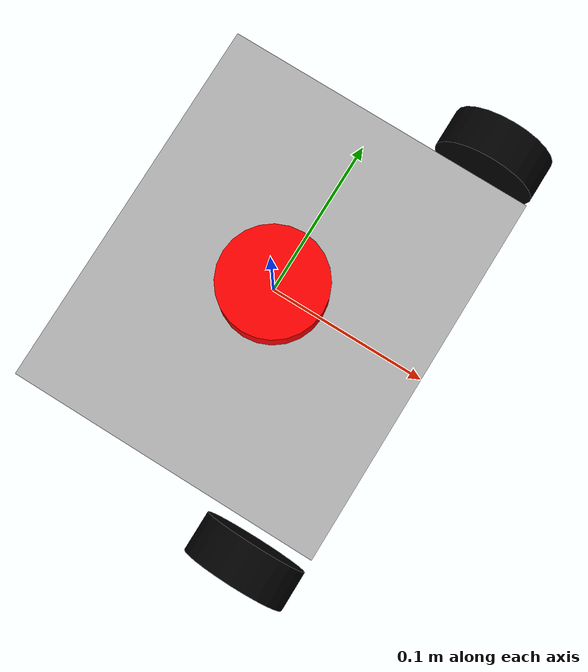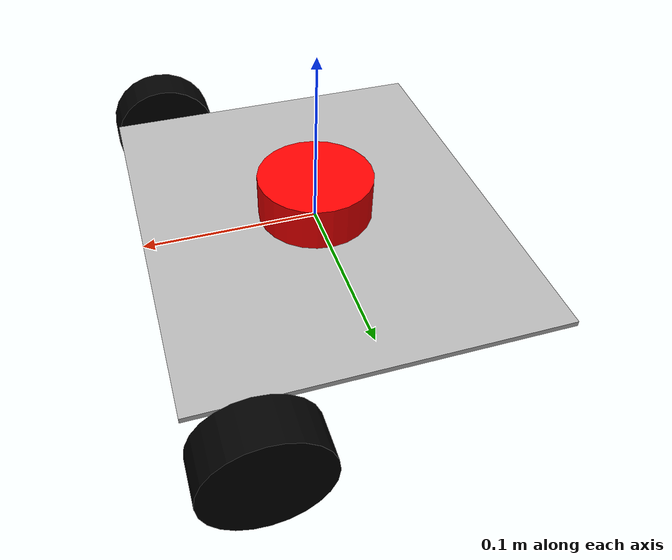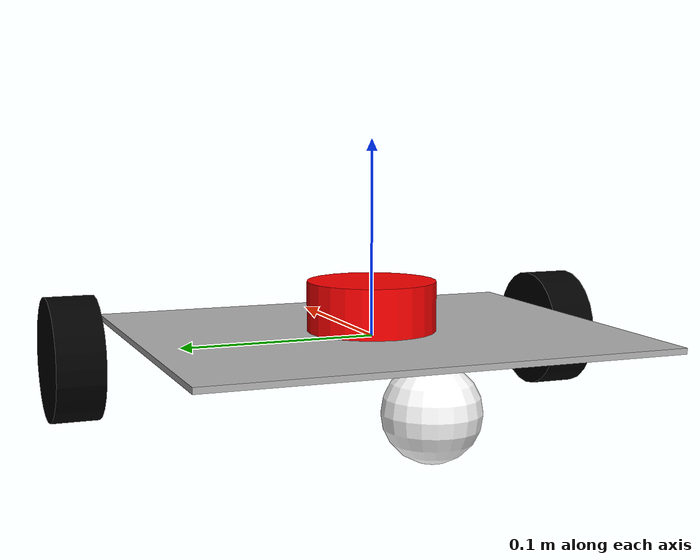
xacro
<?xml version="1.0"?>
<robot xmlns:xacro="https://www.ros.org/wiki/xacro" name="robot">

    <xacro:arg name="use_ros2_control" default="true"/>

    <!--this will be just the robot core components (excluding sensors and such)-->
    <xacro:include filename="robot_core.xacro"/>

    <xacro:if value="$(arg use_ros2_control)">
        <xacro:include filename="ros2_control.xacro" />
    </xacro:if>

    <xacro:unless value="$(arg use_ros2_control)">
        <xacro:include filename="gazebo_control.xacro"/>
    </xacro:unless>

    <!--now add another for the lidar sensor-->
    <xacro:include filename="lidar.xacro"/>

</robot>

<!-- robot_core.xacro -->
<robot xmlns:xacro="https://www.ros.org/wiki/xacro">

    <xacro:include filename="robot_material.xacro"/>
    <xacro:include filename="inertial_macros.xacro"/>

    <link name="base_link"/>

    <link name="chassis_link">
        <visual>
            <geometry>
                <box size=".2 .24 .003"/>
            </geometry>
            <origin xyz="0 0 0.0015" rpy="0 0 0" />
            <material name="gray" />
        </visual>
        <collision>
            <geometry>
                <box size=".2 .24 .003"/>
            </geometry>
            <origin xyz="0 0 0.0015" rpy="0 0 0" />
        </collision>
        <xacro:inertial_box mass=".09" x=".2" y=".24" z=".003">
            <origin xyz="0 0 0.0015" rpy="0 0 0"/>
        </xacro:inertial_box>
    </link>

    <joint name="chassis_joint" type="fixed">
        <parent link="base_link"/>
        <child link="chassis_link"/>
        <origin xyz="0 0 0" rpy="0 0 0"/>
    </joint>

    <gazebo reference="chassis_link">
        <material>Gazebo/White</material>
    </gazebo>

    <link name="left_wheel_link">
        <visual>
            <geometry>
                    <cylinder radius=".033" length="0.0254"/>
                </geometry>
                <origin xyz="0 0 0" rpy="0 0 0" />
                <material name="black"/>
        </visual>
        <collision>
            <geometry>
                <cylinder radius=".033" length="0.0254"/>
            </geometry>
            <origin xyz="0 0 0" rpy="0 0 0"/>
        </collision>
        <xacro:inertial_cylinder mass=".1" length=".0254" radius=".033">
            <origin xyz="0 0 0 " rpy="0 0 0"/>
        </xacro:inertial_cylinder>
    </link>

    <joint name="base_left_wheel_joint" type="continuous">
        <parent link="base_link"/>
        <child link="left_wheel_link"/>
        <origin xyz="0.06825 0.14143125 -.0145" rpy="-${pi/2} 0 0"/>
        <axis xyz="0 0 1" />
        <limit effort="30" velocity="10"/> <!--this will likely change, see urdf page. Effort could be set to estimated stall torque-->
    </joint>

    <gazebo reference="left_wheel_link">
        <material>Gazebo/Black</material>
    </gazebo>

    <link name="right_wheel_link">
        <visual>
            <geometry>
                <cylinder radius=".033" length="0.0254"/>
            </geometry>
            <origin xyz="0 0 0" rpy="0 0 0" />
            <material name="black"/>
        </visual>
        <collision>
            <geometry>
                <cylinder radius=".033" length="0.0254"/>
            </geometry>
            <origin xyz="0 0 0" rpy="0 0 0"/>
        </collision>
                <xacro:inertial_cylinder mass=".1" length=".0254" radius=".033">
            <origin xyz="0 0 0 " rpy="0 0 0"/>
        </xacro:inertial_cylinder>
    </link>

    <joint name="base_right_wheel_joint" type="continuous">
        <parent link="base_link"/>
        <child link="right_wheel_link"/>
        <origin xyz="0.06825 -0.14143125 -.0145" rpy="${pi/2} 0 0"/>
        <axis xyz="0 0 -1" />
        <limit effort="30" velocity="10"/> <!--this will likely change, see urdf page. Effort could be set to estimated stall torque-->
    </joint>

    <gazebo reference="right_wheel_link">
        <material>Gazebo/Black</material>
    </gazebo>

    <link name="caster_wheel_link">
        <visual>
            <geometry>
                <sphere radius=".02375"/>
            </geometry>
            <origin xyz="0 0 0" rpy="0 0 0" />
            <material name="white"/>
        </visual>
        <collision>
            <geometry>
                <sphere radius=".02375"/>
            </geometry>
            <origin xyz="0 0 0" rpy="0 0 0"/>
        </collision>
        <inertial>
            <mass value="0.034"/>
            <origin xyz="0 0 0" rpy="0 0 0"/>
            <inertia ixx=".00000767125" ixy="0" ixz="0" iyy=".00000767125" iyz="0" izz=".00000767125"/>
        </inertial>
        <xacro:inertial_sphere mass=".1" radius=".02375">
            <origin xyz="0 0 0" rpy="0 0 0"/>
        </xacro:inertial_sphere>
    </link>

    <joint name="base_caster_wheel_joint" type="fixed">
        <parent link="base_link"/>
        <child link="caster_wheel_link"/>
        <origin xyz="-0.0730125 0 -.02375" rpy="0 0 0"/>
    </joint>

    <gazebo reference="caster_wheel_link">
        <material>Gazebo/White</material>
    </gazebo>

</robot>

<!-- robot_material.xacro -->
<robot xmlns:xacro="https://www.ros.org/wiki/xacro">

    <material name="gray">
        <color rgba="0.7 0.7 0.7 1"/>
    </material>

    <material name="green">
        <color rgba="0 0.6 0 1"/>
    </material>

    <material name="white">
        <color rgba="1 1 1 1"/>
    </material>

    <material name="blue">
        <color rgba="0 0 1 1"/>
    </material>

    <material name="black">
        <color rgba="0 0 0 1"/>
    </material>

    <material name="red">
        <color rgba="1 0 0 1"/>
    </material>

</robot>

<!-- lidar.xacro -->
<robot xmlns:xacro="https://www.ros.org/wiki/xacro">

    <xacro:include filename="inertial_macros.xacro"/>

    <joint name="lidar_joint" type="fixed">
        <parent link="chassis_link"/>
        <child link="lidar_frame"/>
        <origin xyz="0 0 0.0157" rpy="0 0 0"/>
    </joint>

    <link name="lidar_frame">
        <visual>
            <geometry>
                <cylinder radius=".033" length="0.0254"/>
            </geometry>
            <origin xyz="0 0 0" rpy="0 0 0" />
            <material name="red"/>
        </visual>
        <collision>
            <geometry>
                <cylinder radius=".033" length="0.0254"/>
            </geometry>
            <origin xyz="0 0 0" rpy="0 0 0"/>
        </collision>
        <xacro:inertial_cylinder mass=".1" length=".0254" radius=".033">
            <origin xyz="0 0 0 " rpy="0 0 0"/>
        </xacro:inertial_cylinder>
    </link>

    <gazebo reference="lidar_frame">
        <material>Gazebo/Red</material>

        <sensor name="laser" type="ray">
            <pose>0 0 0 0 0 0</pose>
            <visualize>true</visualize>
            <update_rate>10</update_rate>
            <ray>
                <scan>
                    <horizontal>
                        <samples>360</samples>
                        <min_angle>-3.14</min_angle>
                        <max_angle>3.14</max_angle>
                    </horizontal>
                </scan>
                <range>
                    <min>0.3</min>
                    <max>12</max>
                </range>
            </ray>
            <plugin name="laser_controller" filename="libgazebo_ros_laser.so">
                <ros>
                    <argument>~/output:=/my_robot/laser/scan</argument>
                </ros>
                <output_type>sensor_msgs/LaserScan</output_type>
                <frame_name>lidar_frame</frame_name>
            </plugin>

        </sensor>
    </gazebo>

</robot>
